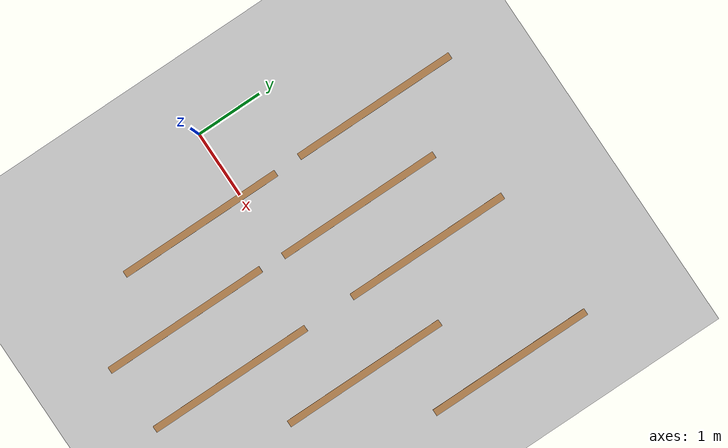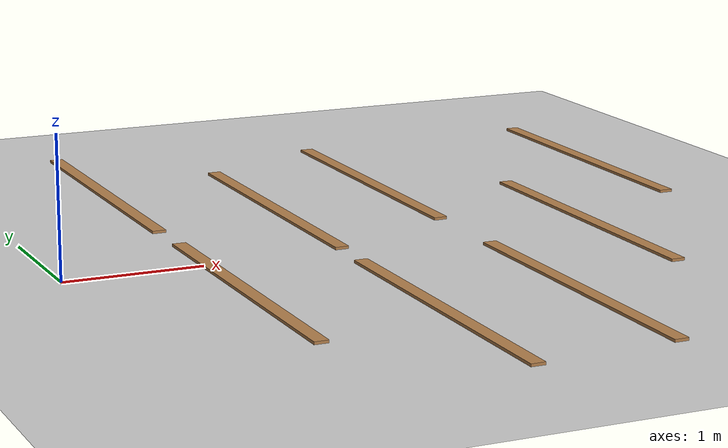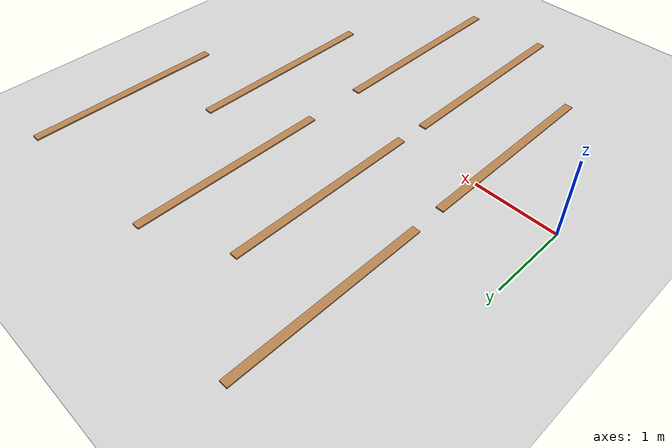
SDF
<sdf version="1.7">
 <world name="default">
  <light name="sun" type="directional">
   <pose>0 0 10 0 -0 0</pose>
   <diffuse>0.8 0.8 0.8 1</diffuse>
   <specular>0.2 0.2 0.2 1</specular>
   <attenuation>
    <range>1000</range>
    <constant>0.9</constant>
    <linear>0.01</linear>
    <quadratic>0.001</quadratic>
   </attenuation>
   <direction>-0.5 0.1 -0.9</direction>
   <spot><inner_angle>0</inner_angle><outer_angle>0</outer_angle><falloff>0</falloff></spot>
  </light>
  <model name="ground_plane">
   <static>1</static>
   <link name="link">
    <collision name="collision">
     <geometry><plane><normal>0 0 1</normal><size>100 100</size></plane></geometry>
     <surface>
      <contact><collide_bitmask>65535</collide_bitmask></contact>
      <friction><ode><mu>100</mu><mu2>50</mu2></ode></friction>
     </surface>
    </collision>
    <visual name="visual">
     <cast_shadows>0</cast_shadows>
     <geometry><plane><normal>0 0 1</normal><size>100 100</size></plane></geometry>
     <material>
      <script><uri>file://media/materials/scripts/gazebo.material</uri><name>Gazebo/Grey</name></script>
     </material>
    </visual>
   </link>
  </model>
  <gravity>0 0 -9.8</gravity>
  <magnetic_field>6e-06 2.3e-05 -4.2e-05</magnetic_field>
  <atmosphere type="adiabatic"/>
  <physics type="ode">
   <max_step_size>0.001</max_step_size>
   <real_time_factor>1</real_time_factor>
   <real_time_update_rate>1000</real_time_update_rate>
  </physics>
  <scene><ambient>0.4 0.4 0.4 1</ambient><background>0.7 0.7 0.7 1</background><shadows>1</shadows></scene>
  <spherical_coordinates>
   <surface_model>EARTH_WGS84</surface_model>
   <latitude_deg>0</latitude_deg>
   <longitude_deg>0</longitude_deg>
   <elevation>0</elevation>
   <heading_deg>0</heading_deg>
  </spherical_coordinates>
  <model name="wood_block_10_2_1cm">
   <link name="link">
    <pose>-0.183838 -0.150953 0.005001 0 -0 0</pose>
    <inertial>
     <mass>0.0125</mass>
     <inertia>
      <ixx>7.6e-07</ixx>
      <ixy>0</ixy>
      <ixz>0</ixz>
      <iyy>1.052e-05</iyy>
      <iyz>0</iyz>
      <izz>1.107e-05</izz>
     </inertia>
    </inertial>
    <visual name="visual">
     <geometry><box><size>0.1 2.5 0.02</size></box></geometry>
     <material>
      <script><uri>file://media/materials/scripts/gazebo.material</uri><name>Gazebo/Wood</name></script>
      <shader type="pixel"><normal_map>__default__</normal_map></shader>
      <ambient>1 1 1 1</ambient>
      <diffuse>1 1 1 1</diffuse>
      <specular>0.2 0.2 0.2 1</specular>
      <emissive>0 0 0 1</emissive>
     </material>
    </visual>
    <collision name="collision">
     <geometry><box><size>0.1 0.025 0.01</size></box></geometry>
     <surface>
      <friction>
       <ode><mu>1</mu><mu2>1</mu2><fdir1>0 0 0</fdir1><slip1>0</slip1><slip2>0</slip2></ode>
       <torsional>
        <coefficient>1</coefficient>
        <patch_radius>0</patch_radius>
        <surface_radius>0.05</surface_radius>
        <use_patch_radius>0</use_patch_radius>
        <ode><slip>0</slip></ode>
       </torsional>
      </friction>
      <bounce><restitution_coefficient>0</restitution_coefficient><threshold>1e+06</threshold></bounce>
      <contact>
       <collide_without_contact>0</collide_without_contact>
       <collide_without_contact_bitmask>1</collide_without_contact_bitmask>
       <collide_bitmask>1</collide_bitmask>
       <ode>
        <soft_cfm>0</soft_cfm>
        <soft_erp>0.2</soft_erp>
        <kp>100000</kp>
        <kd>1</kd>
        <max_vel>1</max_vel>
        <min_depth>0.001</min_depth>
       </ode>
       <bullet>
        <split_impulse>1</split_impulse>
        <split_impulse_penetration_threshold>-0.01</split_impulse_penetration_threshold>
        <soft_cfm>0</soft_cfm>
        <soft_erp>0.2</soft_erp>
        <kp>100000</kp>
        <kd>1</kd>
       </bullet>
      </contact>
     </surface>
    </collision>
   </link>
   <link name="link_clone">
    <pose>0.816915 1.7956 0.004955 -2.3e-05 6e-06 0</pose>
    <inertial>
     <mass>0.0125</mass>
     <inertia>
      <ixx>7.6e-07</ixx>
      <ixy>0</ixy>
      <ixz>0</ixz>
      <iyy>1.052e-05</iyy>
      <iyz>0</iyz>
      <izz>1.107e-05</izz>
     </inertia>
    </inertial>
    <visual name="visual">
     <geometry><box><size>0.1 2.5 0.02</size></box></geometry>
     <material>
      <script><uri>file://media/materials/scripts/gazebo.material</uri><name>Gazebo/Wood</name></script>
      <shader type="pixel"><normal_map>__default__</normal_map></shader>
      <ambient>1 1 1 1</ambient>
      <diffuse>1 1 1 1</diffuse>
      <specular>0.2 0.2 0.2 1</specular>
      <emissive>0 0 0 1</emissive>
     </material>
    </visual>
    <collision name="collision">
     <geometry><box><size>0.1 0.025 0.01</size></box></geometry>
     <surface>
      <friction>
       <ode><mu>1</mu><mu2>1</mu2><fdir1>0 0 0</fdir1><slip1>0</slip1><slip2>0</slip2></ode>
       <torsional>
        <coefficient>1</coefficient>
        <patch_radius>0</patch_radius>
        <surface_radius>0</surface_radius>
        <use_patch_radius>1</use_patch_radius>
        <ode><slip>0</slip></ode>
       </torsional>
      </friction>
      <bounce><restitution_coefficient>0</restitution_coefficient><threshold>1e+06</threshold></bounce>
      <contact>
       <collide_without_contact>0</collide_without_contact>
       <collide_without_contact_bitmask>1</collide_without_contact_bitmask>
       <collide_bitmask>1</collide_bitmask>
       <ode>
        <soft_cfm>0</soft_cfm>
        <soft_erp>0.2</soft_erp>
        <kp>1e+13</kp>
        <kd>1</kd>
        <max_vel>0.01</max_vel>
        <min_depth>0</min_depth>
       </ode>
       <bullet>
        <split_impulse>1</split_impulse>
        <split_impulse_penetration_threshold>-0.01</split_impulse_penetration_threshold>
        <soft_cfm>0</soft_cfm>
        <soft_erp>0.2</soft_erp>
        <kp>1e+13</kp>
        <kd>1</kd>
       </bullet>
      </contact>
     </surface>
    </collision>
   </link>
   <link name="link_clone_0">
    <pose>0.796415 -1.05944 0.00502 -2.3e-05 6e-06 0</pose>
    <inertial>
     <mass>0.0125</mass>
     <inertia>
      <ixx>7.6e-07</ixx>
      <ixy>0</ixy>
      <ixz>0</ixz>
      <iyy>1.052e-05</iyy>
      <iyz>0</iyz>
      <izz>1.107e-05</izz>
     </inertia>
    </inertial>
    <visual name="visual">
     <geometry><box><size>0.1 2.5 0.02</size></box></geometry>
     <material>
      <script><uri>file://media/materials/scripts/gazebo.material</uri><name>Gazebo/Wood</name></script>
      <shader type="pixel"><normal_map>__default__</normal_map></shader>
      <ambient>1 1 1 1</ambient>
      <diffuse>1 1 1 1</diffuse>
      <specular>0.2 0.2 0.2 1</specular>
      <emissive>0 0 0 1</emissive>
     </material>
    </visual>
    <collision name="collision">
     <geometry><box><size>0.1 0.025 0.01</size></box></geometry>
     <surface>
      <friction>
       <ode><mu>1</mu><mu2>1</mu2><fdir1>0 0 0</fdir1><slip1>0</slip1><slip2>0</slip2></ode>
       <torsional>
        <coefficient>1</coefficient>
        <patch_radius>0</patch_radius>
        <surface_radius>0</surface_radius>
        <use_patch_radius>1</use_patch_radius>
        <ode><slip>0</slip></ode>
       </torsional>
      </friction>
      <bounce><restitution_coefficient>0</restitution_coefficient><threshold>1e+06</threshold></bounce>
      <contact>
       <collide_without_contact>0</collide_without_contact>
       <collide_without_contact_bitmask>1</collide_without_contact_bitmask>
       <collide_bitmask>1</collide_bitmask>
       <ode>
        <soft_cfm>0</soft_cfm>
        <soft_erp>0.2</soft_erp>
        <kp>1e+13</kp>
        <kd>1</kd>
        <max_vel>0.01</max_vel>
        <min_depth>0</min_depth>
       </ode>
       <bullet>
        <split_impulse>1</split_impulse>
        <split_impulse_penetration_threshold>-0.01</split_impulse_penetration_threshold>
        <soft_cfm>0</soft_cfm>
        <soft_erp>0.2</soft_erp>
        <kp>1e+13</kp>
        <kd>1</kd>
       </bullet>
      </contact>
     </surface>
    </collision>
   </link>
   <link name="link_clone_1">
    <pose>-0.1925 2.73601 0.00494 -2.3e-05 6e-06 0</pose>
    <inertial>
     <mass>0.0125</mass>
     <inertia>
      <ixx>7.6e-07</ixx>
      <ixy>0</ixy>
      <ixz>0</ixz>
      <iyy>1.052e-05</iyy>
      <iyz>0</iyz>
      <izz>1.107e-05</izz>
     </inertia>
    </inertial>
    <visual name="visual">
     <geometry><box><size>0.1 2.5 0.02</size></box></geometry>
     <material>
      <script><uri>file://media/materials/scripts/gazebo.material</uri><name>Gazebo/Wood</name></script>
      <shader type="pixel"><normal_map>__default__</normal_map></shader>
      <ambient>1 1 1 1</ambient>
      <diffuse>1 1 1 1</diffuse>
      <specular>0.2 0.2 0.2 1</specular>
      <emissive>0 0 0 1</emissive>
     </material>
    </visual>
    <collision name="collision">
     <geometry><box><size>0.1 0.025 0.01</size></box></geometry>
     <surface>
      <friction>
       <ode><mu>1</mu><mu2>1</mu2><fdir1>0 0 0</fdir1><slip1>0</slip1><slip2>0</slip2></ode>
       <torsional>
        <coefficient>1</coefficient>
        <patch_radius>0</patch_radius>
        <surface_radius>0</surface_radius>
        <use_patch_radius>1</use_patch_radius>
        <ode><slip>0</slip></ode>
       </torsional>
      </friction>
      <bounce><restitution_coefficient>0</restitution_coefficient><threshold>1e+06</threshold></bounce>
      <contact>
       <collide_without_contact>0</collide_without_contact>
       <collide_without_contact_bitmask>1</collide_without_contact_bitmask>
       <collide_bitmask>1</collide_bitmask>
       <ode>
        <soft_cfm>0</soft_cfm>
        <soft_erp>0.2</soft_erp>
        <kp>1e+13</kp>
        <kd>1</kd>
        <max_vel>0.01</max_vel>
        <min_depth>0</min_depth>
       </ode>
       <bullet>
        <split_impulse>1</split_impulse>
        <split_impulse_penetration_threshold>-0.01</split_impulse_penetration_threshold>
        <soft_cfm>0</soft_cfm>
        <soft_erp>0.2</soft_erp>
        <kp>1e+13</kp>
        <kd>1</kd>
       </bullet>
      </contact>
     </surface>
    </collision>
   </link>
   <link name="link_clone_2">
    <pose>1.81162 2.26262 0.00494 -2.3e-05 6e-06 0</pose>
    <inertial>
     <mass>0.0125</mass>
     <inertia>
      <ixx>7.6e-07</ixx>
      <ixy>0</ixy>
      <ixz>0</ixz>
      <iyy>1.052e-05</iyy>
      <iyz>0</iyz>
      <izz>1.107e-05</izz>
     </inertia>
    </inertial>
    <visual name="visual">
     <geometry><box><size>0.1 2.5 0.02</size></box></geometry>
     <material>
      <script><uri>file://media/materials/scripts/gazebo.material</uri><name>Gazebo/Wood</name></script>
      <shader type="pixel"><normal_map>__default__</normal_map></shader>
      <ambient>1 1 1 1</ambient>
      <diffuse>1 1 1 1</diffuse>
      <specular>0.2 0.2 0.2 1</specular>
      <emissive>0 0 0 1</emissive>
     </material>
    </visual>
    <collision name="collision">
     <geometry><box><size>0.1 0.025 0.01</size></box></geometry>
     <surface>
      <friction>
       <ode><mu>1</mu><mu2>1</mu2><fdir1>0 0 0</fdir1><slip1>0</slip1><slip2>0</slip2></ode>
       <torsional>
        <coefficient>1</coefficient>
        <patch_radius>0</patch_radius>
        <surface_radius>0</surface_radius>
        <use_patch_radius>1</use_patch_radius>
        <ode><slip>0</slip></ode>
       </torsional>
      </friction>
      <bounce><restitution_coefficient>0</restitution_coefficient><threshold>1e+06</threshold></bounce>
      <contact>
       <collide_without_contact>0</collide_without_contact>
       <collide_without_contact_bitmask>1</collide_without_contact_bitmask>
       <collide_bitmask>1</collide_bitmask>
       <ode>
        <soft_cfm>0</soft_cfm>
        <soft_erp>0.2</soft_erp>
        <kp>1e+13</kp>
        <kd>1</kd>
        <max_vel>0.01</max_vel>
        <min_depth>0</min_depth>
       </ode>
       <bullet>
        <split_impulse>1</split_impulse>
        <split_impulse_penetration_threshold>-0.01</split_impulse_penetration_threshold>
        <soft_cfm>0</soft_cfm>
        <soft_erp>0.2</soft_erp>
        <kp>1e+13</kp>
        <kd>1</kd>
       </bullet>
      </contact>
     </surface>
    </collision>
   </link>
   <link name="link_clone_3">
    <pose>1.81427 -0.997185 0.005013 -2.3e-05 6e-06 0</pose>
    <inertial>
     <mass>0.0125</mass>
     <inertia>
      <ixx>7.6e-07</ixx>
      <ixy>0</ixy>
      <ixz>0</ixz>
      <iyy>1.052e-05</iyy>
      <iyz>0</iyz>
      <izz>1.107e-05</izz>
     </inertia>
    </inertial>
    <visual name="visual">
     <geometry><box><size>0.1 2.5 0.02</size></box></geometry>
     <material>
      <script><uri>file://media/materials/scripts/gazebo.material</uri><name>Gazebo/Wood</name></script>
      <shader type="pixel"><normal_map>__default__</normal_map></shader>
      <ambient>1 1 1 1</ambient>
      <diffuse>1 1 1 1</diffuse>
      <specular>0.2 0.2 0.2 1</specular>
      <emissive>0 0 0 1</emissive>
     </material>
    </visual>
    <collision name="collision">
     <geometry><box><size>0.1 0.025 0.01</size></box></geometry>
     <surface>
      <friction>
       <ode><mu>1</mu><mu2>1</mu2><fdir1>0 0 0</fdir1><slip1>0</slip1><slip2>0</slip2></ode>
       <torsional>
        <coefficient>1</coefficient>
        <patch_radius>0</patch_radius>
        <surface_radius>0</surface_radius>
        <use_patch_radius>1</use_patch_radius>
        <ode><slip>0</slip></ode>
       </torsional>
      </friction>
      <bounce><restitution_coefficient>0</restitution_coefficient><threshold>1e+06</threshold></bounce>
      <contact>
       <collide_without_contact>0</collide_without_contact>
       <collide_without_contact_bitmask>1</collide_without_contact_bitmask>
       <collide_bitmask>1</collide_bitmask>
       <ode>
        <soft_cfm>0</soft_cfm>
        <soft_erp>0.2</soft_erp>
        <kp>1e+13</kp>
        <kd>1</kd>
        <max_vel>0.01</max_vel>
        <min_depth>0</min_depth>
       </ode>
       <bullet>
        <split_impulse>1</split_impulse>
        <split_impulse_penetration_threshold>-0.01</split_impulse_penetration_threshold>
        <soft_cfm>0</soft_cfm>
        <soft_erp>0.2</soft_erp>
        <kp>1e+13</kp>
        <kd>1</kd>
       </bullet>
      </contact>
     </surface>
    </collision>
   </link>
   <link name="link_clone_4">
    <pose>2.77918 0.57625 0.004972 -2.3e-05 6e-06 0</pose>
    <inertial>
     <mass>0.0125</mass>
     <inertia>
      <ixx>7.6e-07</ixx>
      <ixy>0</ixy>
      <ixz>0</ixz>
      <iyy>1.052e-05</iyy>
      <iyz>0</iyz>
      <izz>1.107e-05</izz>
     </inertia>
    </inertial>
    <visual name="visual">
     <geometry><box><size>0.1 2.5 0.02</size></box></geometry>
     <material>
      <script><uri>file://media/materials/scripts/gazebo.material</uri><name>Gazebo/Wood</name></script>
      <shader type="pixel"><normal_map>__default__</normal_map></shader>
      <ambient>1 1 1 1</ambient>
      <diffuse>1 1 1 1</diffuse>
      <specular>0.2 0.2 0.2 1</specular>
      <emissive>0 0 0 1</emissive>
     </material>
    </visual>
    <collision name="collision">
     <geometry><box><size>0.1 0.025 0.01</size></box></geometry>
     <surface>
      <friction>
       <ode><mu>1</mu><mu2>1</mu2><fdir1>0 0 0</fdir1><slip1>0</slip1><slip2>0</slip2></ode>
       <torsional>
        <coefficient>1</coefficient>
        <patch_radius>0</patch_radius>
        <surface_radius>0</surface_radius>
        <use_patch_radius>1</use_patch_radius>
        <ode><slip>0</slip></ode>
       </torsional>
      </friction>
      <bounce><restitution_coefficient>0</restitution_coefficient><threshold>1e+06</threshold></bounce>
      <contact>
       <collide_without_contact>0</collide_without_contact>
       <collide_without_contact_bitmask>1</collide_without_contact_bitmask>
       <collide_bitmask>1</collide_bitmask>
       <ode>
        <soft_cfm>0</soft_cfm>
        <soft_erp>0.2</soft_erp>
        <kp>1e+13</kp>
        <kd>1</kd>
        <max_vel>0.01</max_vel>
        <min_depth>0</min_depth>
       </ode>
       <bullet>
        <split_impulse>1</split_impulse>
        <split_impulse_penetration_threshold>-0.01</split_impulse_penetration_threshold>
        <soft_cfm>0</soft_cfm>
        <soft_erp>0.2</soft_erp>
        <kp>1e+13</kp>
        <kd>1</kd>
       </bullet>
      </contact>
     </surface>
    </collision>
   </link>
   <link name="link_clone_5">
    <pose>3.76847 2.32262 0.004927 -2.3e-05 6e-06 0</pose>
    <inertial>
     <mass>0.0125</mass>
     <inertia>
      <ixx>7.6e-07</ixx>
      <ixy>0</ixy>
      <ixz>0</ixz>
      <iyy>1.052e-05</iyy>
      <iyz>0</iyz>
      <izz>1.107e-05</izz>
     </inertia>
    </inertial>
    <visual name="visual">
     <geometry><box><size>0.1 2.5 0.02</size></box></geometry>
     <material>
      <script><uri>file://media/materials/scripts/gazebo.material</uri><name>Gazebo/Wood</name></script>
      <shader type="pixel"><normal_map>__default__</normal_map></shader>
      <ambient>1 1 1 1</ambient>
      <diffuse>1 1 1 1</diffuse>
      <specular>0.2 0.2 0.2 1</specular>
      <emissive>0 0 0 1</emissive>
     </material>
    </visual>
    <collision name="collision">
     <geometry><box><size>0.1 0.025 0.01</size></box></geometry>
     <surface>
      <friction>
       <ode><mu>1</mu><mu2>1</mu2><fdir1>0 0 0</fdir1><slip1>0</slip1><slip2>0</slip2></ode>
       <torsional>
        <coefficient>1</coefficient>
        <patch_radius>0</patch_radius>
        <surface_radius>0</surface_radius>
        <use_patch_radius>1</use_patch_radius>
        <ode><slip>0</slip></ode>
       </torsional>
      </friction>
      <bounce><restitution_coefficient>0</restitution_coefficient><threshold>1e+06</threshold></bounce>
      <contact>
       <collide_without_contact>0</collide_without_contact>
       <collide_without_contact_bitmask>1</collide_without_contact_bitmask>
       <collide_bitmask>1</collide_bitmask>
       <ode>
        <soft_cfm>0</soft_cfm>
        <soft_erp>0.2</soft_erp>
        <kp>1e+13</kp>
        <kd>1</kd>
        <max_vel>0.01</max_vel>
        <min_depth>0</min_depth>
       </ode>
       <bullet>
        <split_impulse>1</split_impulse>
        <split_impulse_penetration_threshold>-0.01</split_impulse_penetration_threshold>
        <soft_cfm>0</soft_cfm>
        <soft_erp>0.2</soft_erp>
        <kp>1e+13</kp>
        <kd>1</kd>
       </bullet>
      </contact>
     </surface>
    </collision>
   </link>
   <static>0</static>
   <pose>1.21624 -0.517964 -0.000297 2.3e-05 -6e-06 0</pose>
  </model>
 </world>
</sdf>
